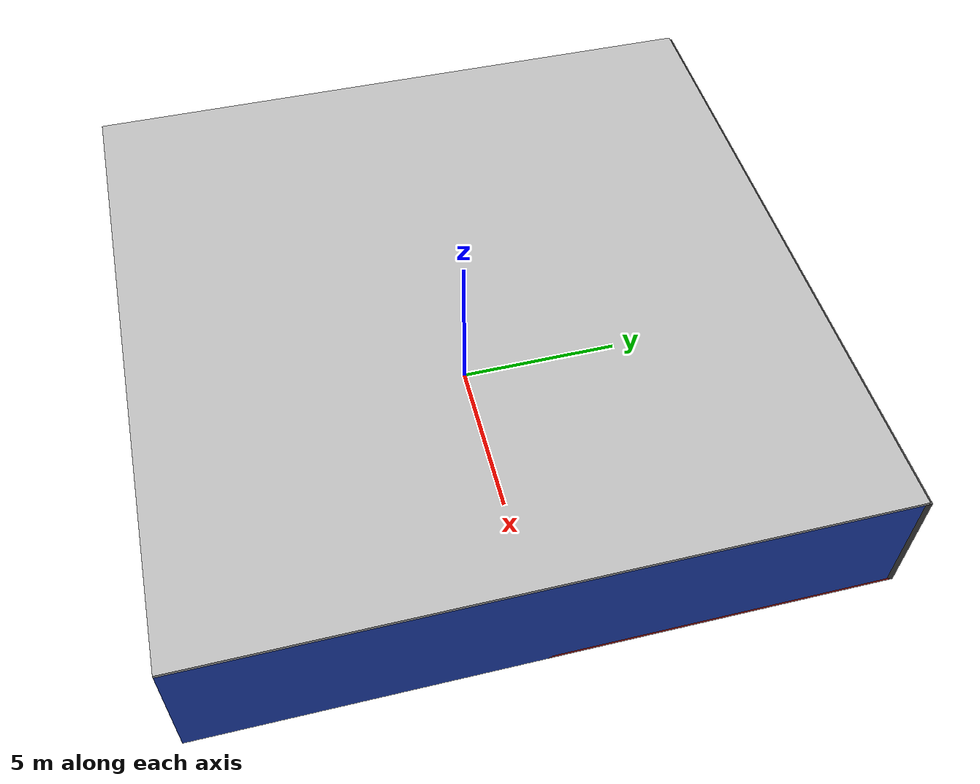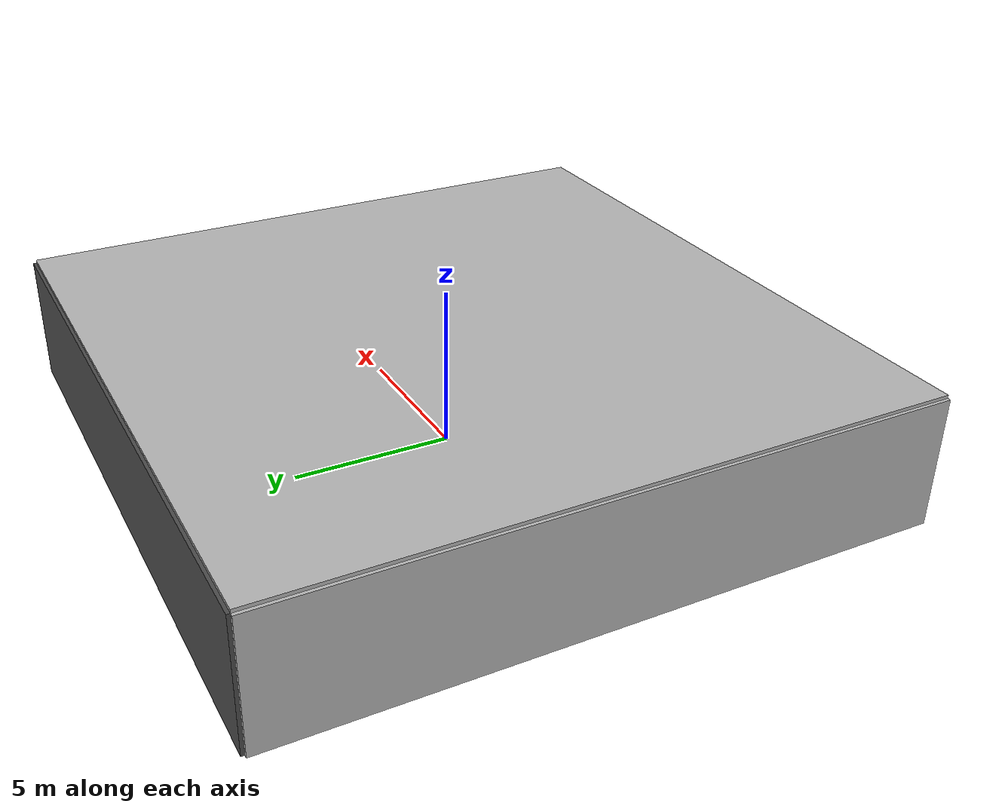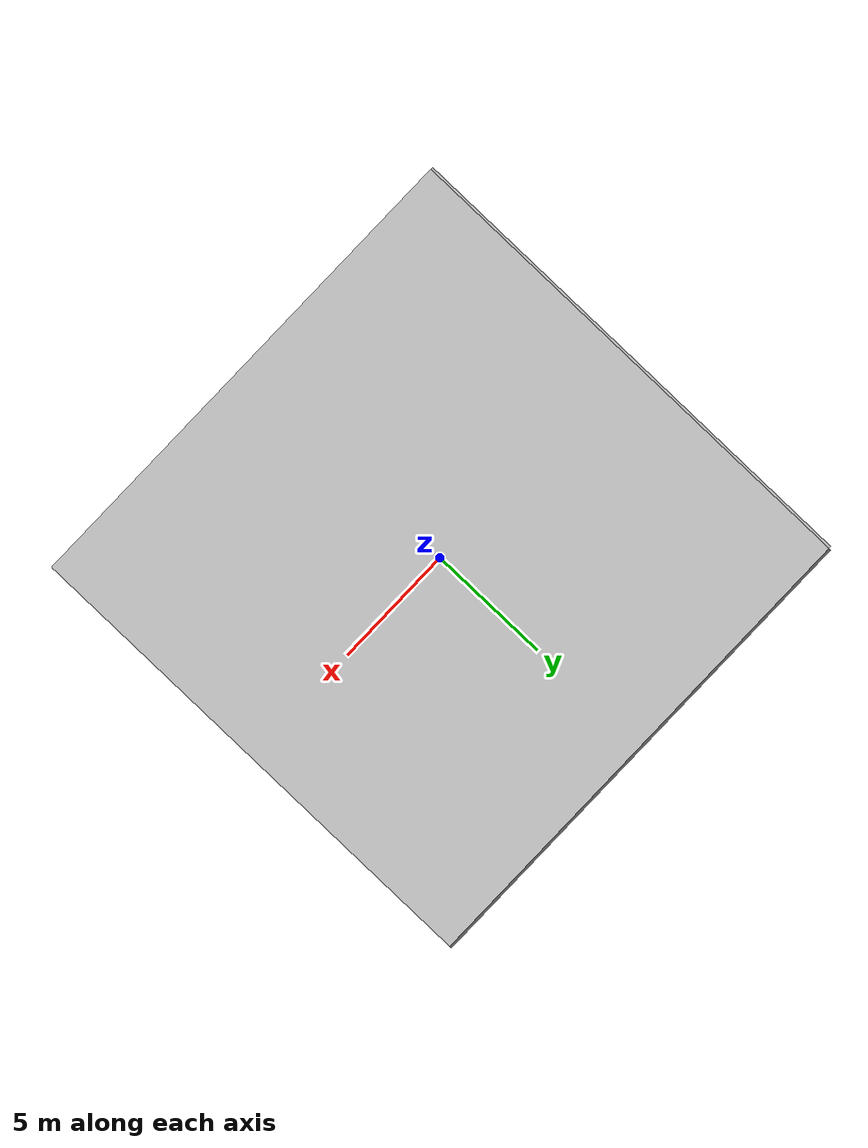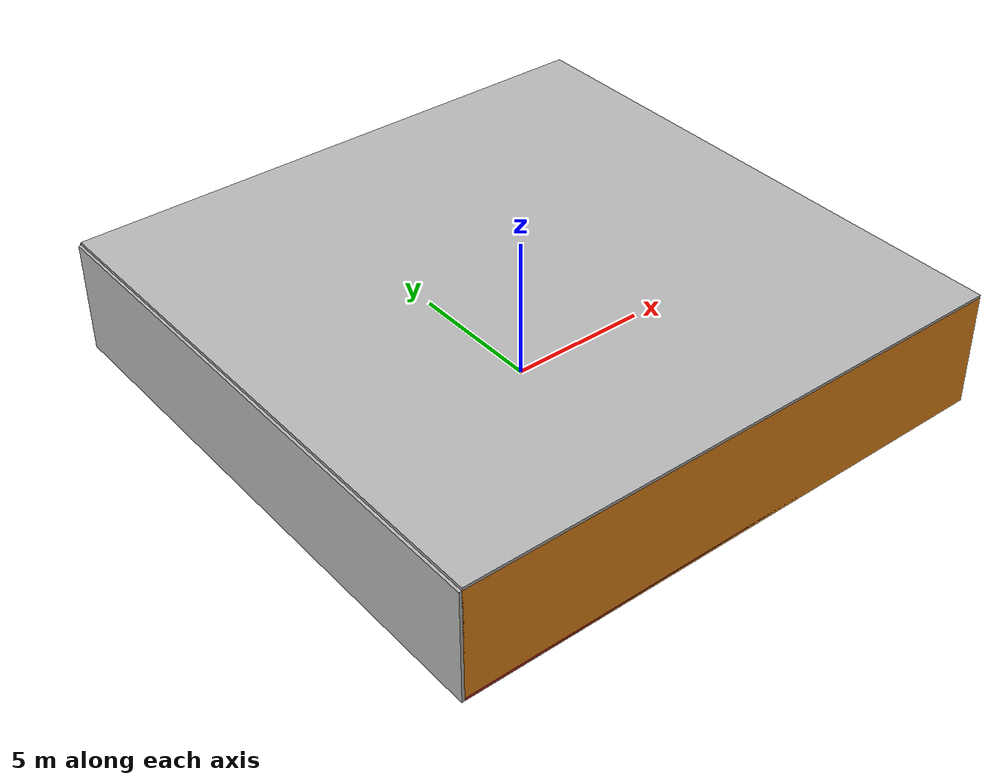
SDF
<sdf version="1.4">
 <world name="default">
  <physics type="ode">
   <max_step_size>0.001</max_step_size>
   <real_time_factor>1</real_time_factor>
   <real_time_update_rate>1000</real_time_update_rate>
   <gravity>0 0 -9.8</gravity>
  </physics>
  <scene><ambient>0.4 0.4 0.4 1</ambient><background>0.7 0.7 0.7 1</background><shadows>1</shadows></scene>
  <model name="Surrounding">
   <static>1</static>
   <link name="Ceiling">
    <collision name="Ceiling_Collision"><geometry><box><size>20 20 0.1</size></box></geometry></collision>
    <visual name="Ceiling_Visual">
     <geometry><box><size>20 20 0.1</size></box></geometry>
     <material>
      <script><uri>file://media/materials/scripts/gazebo.material</uri><name>Gazebo/LightOn</name></script>
     </material>
    </visual>
    <pose>0 0 4.05 0 0 0</pose>
   </link>
   <link name="Wall_South">
    <collision name="Wall_South_Collision">
     <geometry><box><size>20 0 4</size></box></geometry>
     <pose>0 0 2 0 -0 0</pose>
    </collision>
    <visual name="Wall_South_Visual">
     <pose>0 0 2 0 -0 0</pose>
     <geometry><box><size>20 0 4</size></box></geometry>
     <material>
      <script><uri>file://media/materials/scripts/gazebo.material</uri><name>Gazebo/Orange</name></script>
     </material>
    </visual>
    <velocity_decay><linear>0</linear><angular>0</angular></velocity_decay>
    <pose>0 -10 0 0 -0 0</pose>
   </link>
   <link name="Wall_East">
    <collision name="Wall_21_Collision">
     <geometry><box><size>20 0 4</size></box></geometry>
     <pose>0 0 2 0 -0 0</pose>
    </collision>
    <visual name="Wall_21_Visual">
     <pose>0 0 2 0 -0 0</pose>
     <geometry><box><size>20 0 4</size></box></geometry>
     <material>
      <script><uri>file://media/materials/scripts/gazebo.material</uri><name>Gazebo/Blue</name></script>
     </material>
    </visual>
    <velocity_decay><linear>0</linear><angular>0</angular></velocity_decay>
    <pose>10 0 0 0 -0 1.5708</pose>
   </link>
   <link name="Wall_North">
    <collision name="Wall_22_Collision">
     <geometry><box><size>20 0.2 4</size></box></geometry>
     <pose>0 0 2 0 -0 0</pose>
    </collision>
    <visual name="Wall_22_Visual">
     <pose>0 0 2 0 -0 0</pose>
     <geometry><box><size>20 0.2 4</size></box></geometry>
     <material>
      <script><uri>file://media/materials/scripts/gazebo.material</uri><name>Gazebo/DarkGrey</name></script>
     </material>
    </visual>
    <velocity_decay><linear>0</linear><angular>0</angular></velocity_decay>
    <pose>0 10 0 0 -0 0</pose>
   </link>
   <link name="Wall_West">
    <collision name="Wall_23_Collision">
     <geometry><box><size>20 0.2 4</size></box></geometry>
     <pose>0 0 2 0 -0 0</pose>
    </collision>
    <visual name="Wall_23_Visual">
     <pose>0 0 2 0 -0 0</pose>
     <geometry><box><size>20 0.2 4</size></box></geometry>
     <material>
      <script><uri>file://media/materials/scripts/gazebo.material</uri><name>Gazebo/PioneerBody</name></script>
     </material>
    </visual>
    <velocity_decay><linear>0</linear><angular>0</angular></velocity_decay>
    <pose>-10 0 0 0 0 -1.5708</pose>
   </link>
   <link name="Ground_link">
    <collision name="collision">
     <pose>0 0 .05 0 -0 0</pose>
     <geometry><box><size>20 20 0.1</size></box></geometry>
    </collision>
    <visual name="visual">
     <pose>0 0 .05 0 -0 0</pose>
     <geometry><box><size>20 20 0.1</size></box></geometry>
     <material>
      <script><uri>file://media/materials/scripts/gazebo.material</uri><name>Gazebo/RedBright</name></script>
     </material>
    </visual>
   </link>
   <static>1</static>
  </model>
  <spherical_coordinates>
   <surface_model>EARTH_WGS84</surface_model>
   <latitude_deg>0</latitude_deg>
   <longitude_deg>0</longitude_deg>
   <elevation>0</elevation>
   <heading_deg>0</heading_deg>
  </spherical_coordinates>
  <light name="lightball_0" type="diffuse">
   <diffuse>0.8 0.8 0.8 1</diffuse>
   <specular>0.2 0.2 0.2 1</specular>
   <attenuation>
    <range>100</range>
    <constant>0.7</constant>
    <linear>0.01</linear>
    <quadratic>0.001</quadratic>
   </attenuation>
   <direction>-0.5 0.1 -0.9</direction>
   <pose>4.37925137788 -0.823423947474 2.37745569891 0 0 0</pose>
  </light>
  <light name="lightball_1" type="diffuse">
   <diffuse>0.8 0.8 0.8 1</diffuse>
   <specular>0.2 0.2 0.2 1</specular>
   <attenuation>
    <range>100</range>
    <constant>0.7</constant>
    <linear>0.01</linear>
    <quadratic>0.001</quadratic>
   </attenuation>
   <direction>-0.5 0.1 -0.9</direction>
   <pose>3.75942930304 -0.717561070766 3.21515328601 0 0 0</pose>
  </light>
  <light name="lightball_2" type="diffuse">
   <diffuse>0.8 0.8 0.8 1</diffuse>
   <specular>0.2 0.2 0.2 1</specular>
   <attenuation>
    <range>100</range>
    <constant>0.7</constant>
    <linear>0.01</linear>
    <quadratic>0.001</quadratic>
   </attenuation>
   <direction>-0.5 0.1 -0.9</direction>
   <pose>-0.787926854061 -0.165105043046 2.20772621915 0 0 0</pose>
  </light>
  <light name="lightball_3" type="diffuse">
   <diffuse>0.8 0.8 0.8 1</diffuse>
   <specular>0.2 0.2 0.2 1</specular>
   <attenuation>
    <range>100</range>
    <constant>0.7</constant>
    <linear>0.01</linear>
    <quadratic>0.001</quadratic>
   </attenuation>
   <direction>-0.5 0.1 -0.9</direction>
   <pose>4.74782897711 8.05865708377 2.75005072111 0 0 0</pose>
  </light>
  <light name="lightball_4" type="diffuse">
   <diffuse>0.8 0.8 0.8 1</diffuse>
   <specular>0.2 0.2 0.2 1</specular>
   <attenuation>
    <range>100</range>
    <constant>0.7</constant>
    <linear>0.01</linear>
    <quadratic>0.001</quadratic>
   </attenuation>
   <direction>-0.5 0.1 -0.9</direction>
   <pose>-9.039031297 -6.31133063256 2.10673601773 0 0 0</pose>
  </light>
  <light name="lightball_5" type="diffuse">
   <diffuse>0.8 0.8 0.8 1</diffuse>
   <specular>0.2 0.2 0.2 1</specular>
   <attenuation>
    <range>100</range>
    <constant>0.7</constant>
    <linear>0.01</linear>
    <quadratic>0.001</quadratic>
   </attenuation>
   <direction>-0.5 0.1 -0.9</direction>
   <pose>7.34493439362 0.660472872521 1.10185455924 0 0 0</pose>
  </light>
  <light name="lightball_6" type="diffuse">
   <diffuse>0.8 0.8 0.8 1</diffuse>
   <specular>0.2 0.2 0.2 1</specular>
   <attenuation>
    <range>100</range>
    <constant>0.7</constant>
    <linear>0.01</linear>
    <quadratic>0.001</quadratic>
   </attenuation>
   <direction>-0.5 0.1 -0.9</direction>
   <pose>-1.18710871856 -3.67152722805 2.1230526292 0 0 0</pose>
  </light>
  <light name="lightball_7" type="diffuse">
   <diffuse>0.8 0.8 0.8 1</diffuse>
   <specular>0.2 0.2 0.2 1</specular>
   <attenuation>
    <range>100</range>
    <constant>0.7</constant>
    <linear>0.01</linear>
    <quadratic>0.001</quadratic>
   </attenuation>
   <direction>-0.5 0.1 -0.9</direction>
   <pose>-2.57364647974 1.80137933419 3.855847739 0 0 0</pose>
  </light>
  <light name="lightball_8" type="diffuse">
   <diffuse>0.8 0.8 0.8 1</diffuse>
   <specular>0.2 0.2 0.2 1</specular>
   <attenuation>
    <range>100</range>
    <constant>0.7</constant>
    <linear>0.01</linear>
    <quadratic>0.001</quadratic>
   </attenuation>
   <direction>-0.5 0.1 -0.9</direction>
   <pose>-1.62750098905 4.45733431876 2.14965312588 0 0 0</pose>
  </light>
  <light name="lightball_9" type="diffuse">
   <diffuse>0.8 0.8 0.8 1</diffuse>
   <specular>0.2 0.2 0.2 1</specular>
   <attenuation>
    <range>100</range>
    <constant>0.7</constant>
    <linear>0.01</linear>
    <quadratic>0.001</quadratic>
   </attenuation>
   <direction>-0.5 0.1 -0.9</direction>
   <pose>3.22779430929 0.437907680881 3.20453511643 0 0 0</pose>
  </light>
  <light name="lightball_10" type="diffuse">
   <diffuse>0.8 0.8 0.8 1</diffuse>
   <specular>0.2 0.2 0.2 1</specular>
   <attenuation>
    <range>100</range>
    <constant>0.7</constant>
    <linear>0.01</linear>
    <quadratic>0.001</quadratic>
   </attenuation>
   <direction>-0.5 0.1 -0.9</direction>
   <pose>5.73188244687 -1.58356108719 3.49338839857 0 0 0</pose>
  </light>
  <include><uri>model://cabinet</uri><pose>-7.62217191565 -7.89119264737 0 0 0 1.11459019102</pose></include>
  <include><uri>model://table</uri><pose>1.1514950152 -1.22106543822 0 0 0 1.48541796328</pose></include>
 </world>
</sdf>

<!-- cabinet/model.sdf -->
<sdf version="1.5">
  <model name="cabinet">
    <static>true</static>
    <link name="cabinet_bottom_plate">
      <inertial>
        <pose>0 0 -1 0 0 0</pose>
        <inertia>
          <ixx>2.050000</ixx>
          <ixy>0</ixy>
          <ixz>0</ixz>
          <iyy>2.050000</iyy>
          <iyz>0</iyz>
          <izz>2.050000</izz>
        </inertia>
        <mass>25.000000</mass>
      </inertial>
      <collision name="cabinet_bottom_plate_geom">
        <pose>0 0 0.010000 0 0 0</pose>
        <geometry>
          <box>
            <size>0.450000 0.450000 0.020000</size>
          </box>
        </geometry>
      </collision>
      <visual name="cabinet_bottom_plate_geom_visual">
        <pose>0 0 0.010000 0 0 0</pose>
        <geometry>
          <box>
            <size>0.450000 0.450000 0.020000</size>
          </box>
        </geometry>
        <material>
          <script>
            <uri>model://media/materials/scripts/gazebo.material</uri>
            <name>Gazebo/Wood</name>
          </script>
        </material>
      </visual>
      <collision name="cabinet_bottom_plate_geom_cabinet_back_plate">
        <pose>0.235000 0 0.510000 0 0 0</pose>
        <geometry>
          <box>
            <size>0.020000 0.450000 1.020000</size>
          </box>
        </geometry>
      </collision>
      <visual name="cabinet_bottom_plate_geom_cabinet_back_plate_visual">
        <pose>0.235000 0 0.510000 0 0 0</pose>
        <geometry>
          <box>
            <size>0.020000 0.450000 1.020000</size>
          </box>
        </geometry>
        <material>
          <script>
            <uri>model://media/materials/scripts/gazebo.material</uri>
            <name>Gazebo/Wood</name>
          </script>
        </material>
      </visual>
      <collision name="cabinet_bottom_plate_geom_cabinet_left_plate">
        <pose>0 0.235000 0.510000 0 0 0</pose>
        <geometry>
          <box>
            <size>0.450000 0.020000 1.020000</size>
          </box>
        </geometry>
      </collision>
      <visual name="cabinet_bottom_plate_geom_cabinet_left_plate_visual">
        <pose>0 0.235000 0.510000 0 0 0</pose>
        <geometry>
          <box>
            <size>0.450000 0.020000 1.020000</size>
          </box>
        </geometry>
        <material>
          <script>
            <uri>model://media/materials/scripts/gazebo.material</uri>
            <name>Gazebo/Wood</name>
          </script>
        </material>
      </visual>
      <collision name="cabinet_bottom_plate_geom_cabinet_middle_plate">
        <pose>0 0 0.510000 0 0 0</pose>
        <geometry>
          <box>
            <size>0.450000 0.450000 0.020000</size>
          </box>
        </geometry>
      </collision>
      <visual name="cabinet_bottom_plate_geom_cabinet_middle_plate_visual">
        <pose>0 0 0.510000 0 0 0</pose>
        <geometry>
          <box>
            <size>0.450000 0.450000 0.020000</size>
          </box>
        </geometry>
        <material>
          <script>
            <uri>model://media/materials/scripts/gazebo.material</uri>
            <name>Gazebo/Wood</name>
          </script>
        </material>
      </visual>
      <collision name="cabinet_bottom_plate_geom_cabinet_right_plate">
        <pose>0 -0.235000 0.510000 0 0 0</pose>
        <geometry>
          <box>
            <size>0.450000 0.020000 1.020000</size>
          </box>
        </geometry>
      </collision>
      <visual name="cabinet_bottom_plate_geom_cabinet_right_plate_visual">
        <pose>0 -0.235000 0.510000 0 0 0</pose>
        <geometry>
          <box>
            <size>0.450000 0.020000 1.020000</size>
          </box>
        </geometry>
        <material>
          <script>
            <uri>model://media/materials/scripts/gazebo.material</uri>
            <name>Gazebo/Wood</name>
          </script>
        </material>
      </visual>
      <collision name="cabinet_bottom_plate_geom_cabinet_top_plate">
        <pose>0 0 1.010000 0 0 0</pose>
        <geometry>
          <box>
            <size>0.450000 0.450000 0.020000</size>
          </box>
        </geometry>
      </collision>
      <visual name="cabinet_bottom_plate_geom_cabinet_top_plate_visual">
        <pose>0 0 1.010000 0 0 0</pose>
        <geometry>
          <box>
            <size>0.450000 0.450000 0.020000</size>
          </box>
        </geometry>
        <material>
          <script>
            <uri>model://media/materials/scripts/gazebo.material</uri>
            <name>Gazebo/Wood</name>
          </script>
        </material>
      </visual>
    </link>
  </model>
</sdf>

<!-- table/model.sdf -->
<sdf version="1.5">
  <model name="table">
    <static>true</static>
    <link name="link">
      <collision name="surface">
        <pose>0 0 1.0 0 0 0</pose>
        <geometry>
          <box>
            <size>1.5 0.8 0.03</size>
          </box>
        </geometry>
        <surface>
          <friction>
            <ode>
              <mu>0.6</mu>
              <mu2>0.6</mu2>
            </ode>
          </friction>
        </surface>
      </collision>
      <visual name="visual1">
        <pose>0 0 1.0 0 0 0</pose>
        <geometry>
          <box>
            <size>1.5 0.8 0.03</size>
          </box>
        </geometry>
        <material>
          <script>
            <uri>model://media/materials/scripts/gazebo.material</uri>
            <name>Gazebo/Wood</name>
          </script>
        </material>
      </visual>
      <collision name="front_left_leg">
        <pose>0.68 0.38 0.5 0 0 0</pose>
        <geometry>
          <cylinder>
            <radius>0.02</radius>
            <length>1.0</length>
          </cylinder>
        </geometry>
      </collision>
      <visual name="front_left_leg">
        <pose>0.68 0.38 0.5 0 0 0</pose>
        <geometry>
          <cylinder>
            <radius>0.02</radius>
            <length>1.0</length>
          </cylinder>
        </geometry>
        <material>
          <script>
            <uri>model://media/materials/scripts/gazebo.material</uri>
            <name>Gazebo/Grey</name>
          </script>
        </material>
      </visual>
      <collision name="front_right_leg">
        <pose>0.68 -0.38 0.5 0 0 0</pose>
        <geometry>
          <cylinder>
            <radius>0.02</radius>
            <length>1.0</length>
          </cylinder>
        </geometry>
      </collision>
      <visual name="front_right_leg">
        <pose>0.68 -0.38 0.5 0 0 0</pose>
        <geometry>
          <cylinder>
            <radius>0.02</radius>
            <length>1.0</length>
          </cylinder>
        </geometry>
        <material>
          <script>
            <uri>model://media/materials/scripts/gazebo.material</uri>
            <name>Gazebo/Grey</name>
          </script>
        </material>
      </visual>
      <collision name="back_right_leg">
        <pose>-0.68 -0.38 0.5 0 0 0</pose>
        <geometry>
          <cylinder>
            <radius>0.02</radius>
            <length>1.0</length>
          </cylinder>
        </geometry>
      </collision>
      <visual name="back_right_leg">
        <pose>-0.68 -0.38 0.5 0 0 0</pose>
        <geometry>
          <cylinder>
            <radius>0.02</radius>
            <length>1.0</length>
          </cylinder>
        </geometry>
        <material>
          <script>
            <uri>model://media/materials/scripts/gazebo.material</uri>
            <name>Gazebo/Grey</name>
          </script>
        </material>
      </visual>
      <collision name="back_left_leg">
        <pose>-0.68 0.38 0.5 0 0 0</pose>
        <geometry>
          <cylinder>
            <radius>0.02</radius>
            <length>1.0</length>
          </cylinder>
        </geometry>
      </collision>
      <visual name="back_left_leg">
        <pose>-0.68 0.38 0.5 0 0 0</pose>
        <geometry>
          <cylinder>
            <radius>0.02</radius>
            <length>1.0</length>
          </cylinder>
        </geometry>
        <material>
          <script>
            <uri>model://media/materials/scripts/gazebo.material</uri>
            <name>Gazebo/Grey</name>
          </script>
        </material>
      </visual>
    </link>
  </model>
</sdf>
